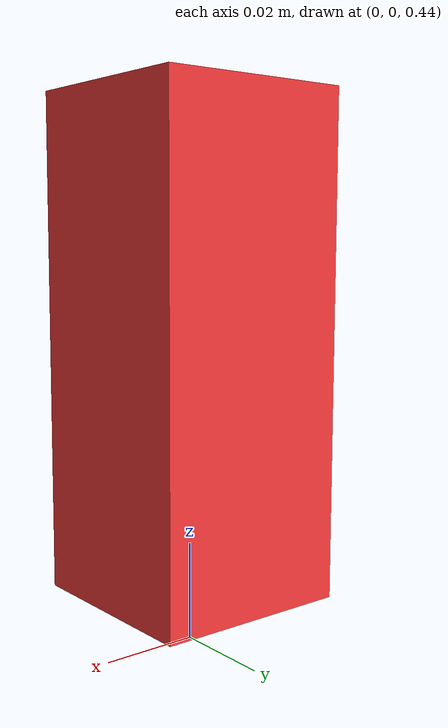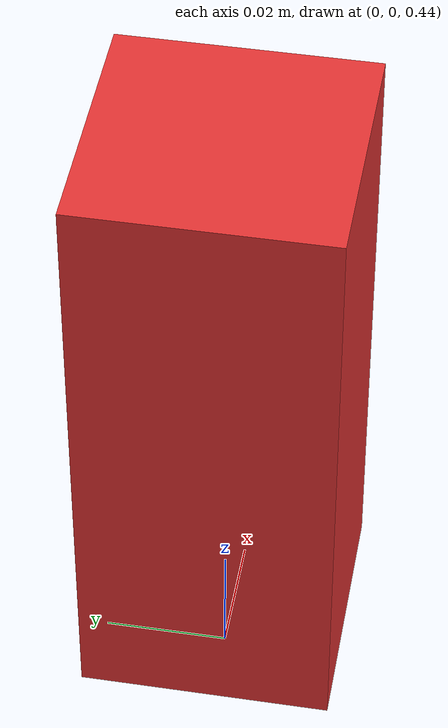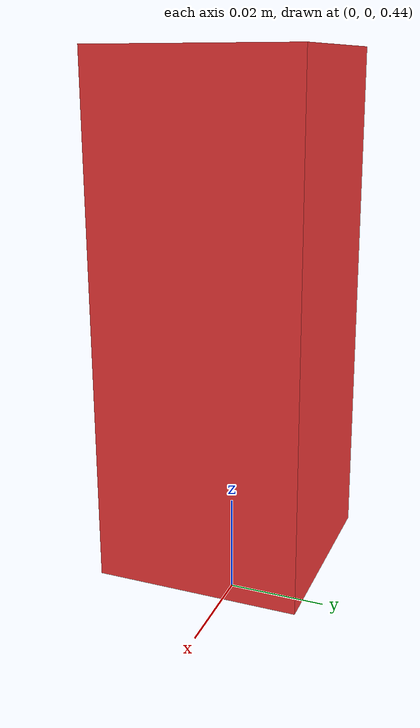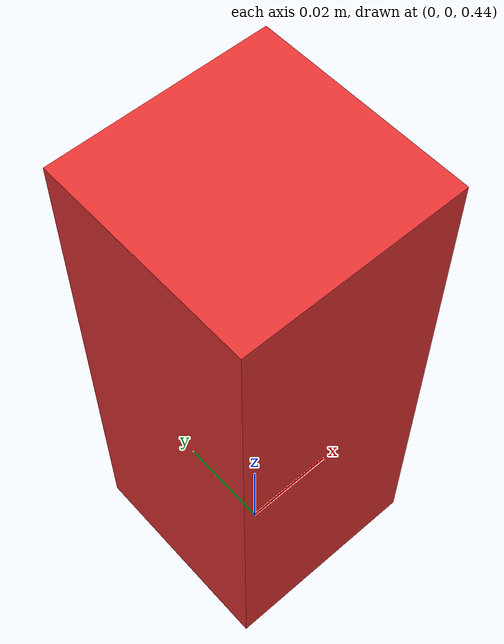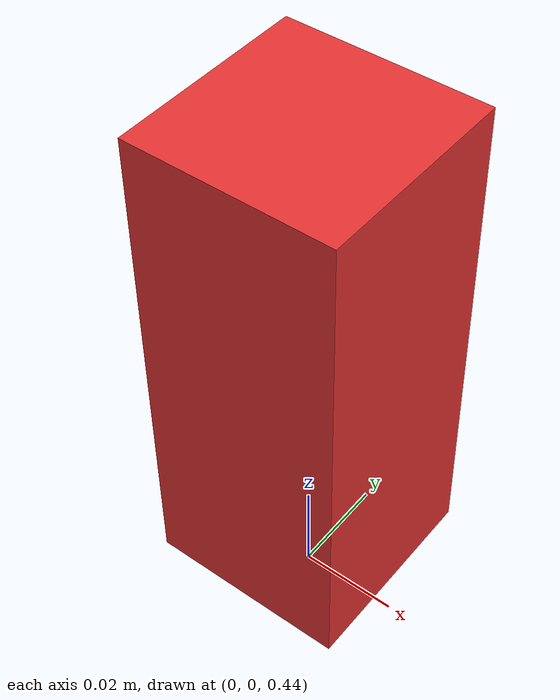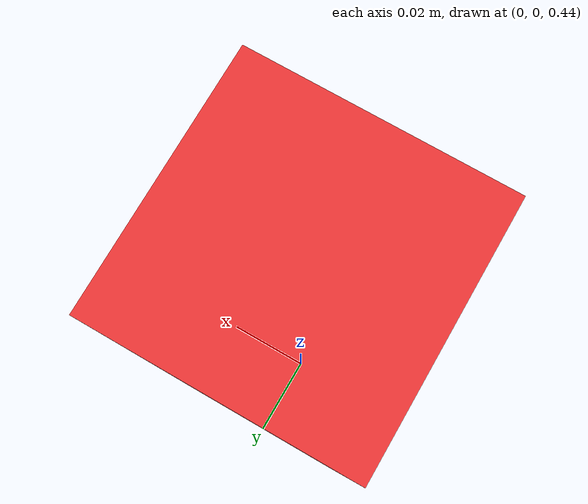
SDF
<?xml version="1.0" ?>
<sdf version="1.6">
  <model name="square_block">
    <static>false</static>

    <!-- Link chính -->
    <link name="link">
      <!-- Visual -->
      <visual name="visual">
        <geometry>
          <!-- Kích thước: size x y z (m). Thay đổi ở đây nếu cần) -->
          <box>
            <size>0.04 0.04 0.1</size>
          </box>
        </geometry>
        <material>
          <ambient>0.8 0.1 0.1 1</ambient>
          <diffuse>0.9 0.2 0.2 1</diffuse>
          <specular>0.1 0.1 0.1 1</specular>
        </material>
      </visual>

      <!-- Collision (dùng để va chạm) -->
      <collision name="collision">
        <geometry>
          <box>
            <size>0.04 0.04 0.1</size>
          </box>
        </geometry>
        <surface>
          <friction>
            <ode>
              <mu>1.0</mu>
              <mu2>1.0</mu2>
            </ode>
          </friction>
          <bounce>
            <restitution_coefficient>0.0</restitution_coefficient>
          </bounce>
        </surface>
      </collision>

      <!-- Inertial: đặt tham số hợp lý cho khối 1x1x1, khối lượng 1kg -->
      <inertial>
        <mass>1.0</mass>
        <inertia>
          <ixx>0.1666667</ixx>
          <iyy>0.1666667</iyy>
          <izz>0.1666667</izz>
        </inertia>
      </inertial>
    </link>

    <!-- Khởi tạo vị trí (tùy chỉnh) -->
    <pose>0 0 0.5 0 0 0</pose> <!-- x y z roll pitch yaw: z=0.5 để khối cao nửa mét (khối cao 1m) -->
  </model>
</sdf>
